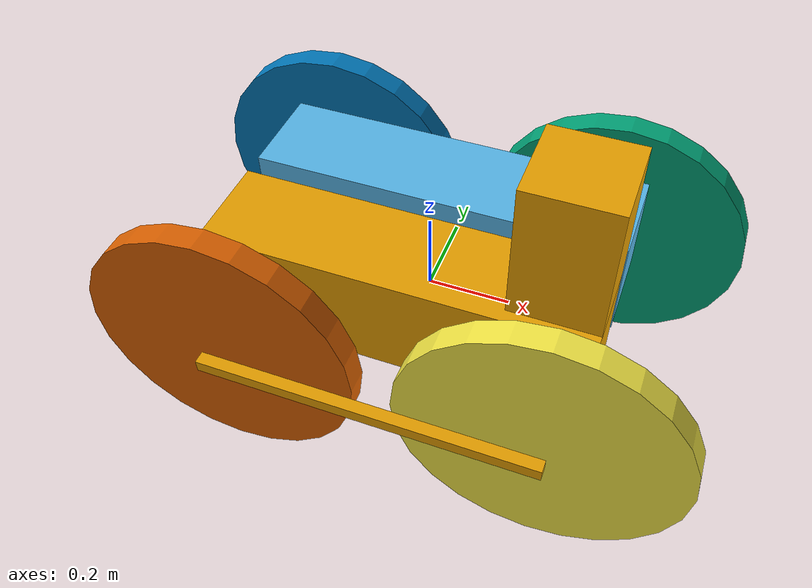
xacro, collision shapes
<?xml version='1.0' encoding='utf-8'?>
<robot name='coro_mike_sensor_config_1' xmlns:xacro="http://ros.org/wiki/xacro">
  <xacro:arg name="name" default="coro_mike_sensor_config_1"/>
  <xacro:property name="robot_namespace" value="$(arg name)"/>
  <link name='${robot_namespace}/base_link'>
    <inertial>
      <origin xyz='0 -0.14 0.11' rpy='0 -0 0'/>
      <mass value='27.85'/>
      <inertia ixx='0.274' ixy='0' ixz='0' iyy='1.961' iyz='0' izz='1.989'/>
    </inertial>
    <collision name='chassis_collision'>
      <origin xyz='0 -0.14 0.11' rpy='0 -0 0'/>
      <geometry>
        <box size='0.89 0.23 0.255'/>
      </geometry>
    </collision>
    <collision name='chassis_collision2'>
      <origin xyz='0 -0.41 0' rpy='0 -0 0'/>
      <geometry>
        <box size='0.8 0.03 0.03'/>
      </geometry>
    </collision>
    <collision name='tower_collision'>
      <origin xyz='0.345 -0.125 0.39' rpy='0 -0 0'/>
      <geometry>
        <box size='0.2 0.2 0.34'/>
      </geometry>
    </collision>
    <visual name='chassis_main_visual'>
      <origin xyz='0 -0.14 0.11' rpy='0 -0 0'/>
      <geometry>
        <box size='0.89 0.23 0.255'/>
      </geometry>
    </visual>
    <visual name='chassis_main_outside_visual1'>
      <origin xyz='0 -0.41 0' rpy='0 -0 0'/>
      <geometry>
        <box size='0.8 0.03 0.03'/>
      </geometry>
    </visual>
    <visual name='chassis_main_outside_visual2'>
      <origin xyz='0 -0.33 0' rpy='0 -0 0'/>
      <geometry>
        <box size='0.06 0.16 0.03'/>
      </geometry>
    </visual>
    <visual name='chassis_joint_visual'>
      <origin xyz='0 0 0.04' rpy='1.5708 -0 0'/>
      <geometry>
        <cylinder radius='0.05' length='0.05'/>
      </geometry>
    </visual>
    <visual name='plate1_visual'>
      <origin xyz='0.345 -0.125 0.54' rpy='0 -0 0'/>
      <geometry>
        <box size='0.2 0.2 0.005'/>
      </geometry>
    </visual>
    <visual name='plate2_visual'>
      <origin xyz='0.345 -0.125 0.43' rpy='0 -0 0'/>
      <geometry>
        <box size='0.2 0.2 0.005'/>
      </geometry>
    </visual>
    <visual name='plate3_visual_was35_11_29'>
      <origin xyz='0.345 -0.125 0.24' rpy='0 -0 0'/>
      <geometry>
        <box size='0.2 0.2 0.005'/>
      </geometry>
    </visual>
    <visual name='beam1_visual'>
      <origin xyz='0.436 -0.034 0.39' rpy='0 -0 0'/>
      <geometry>
        <box size='0.02 0.02 0.3'/>
      </geometry>
    </visual>
    <visual name='beam2_visual'>
      <origin xyz='0.436 -0.216 0.39' rpy='0 -0 0'/>
      <geometry>
        <box size='0.02 0.02 0.3'/>
      </geometry>
    </visual>
    <visual name='beam3_visual'>
      <origin xyz='0.254 -0.034 0.39' rpy='0 -0 0'/>
      <geometry>
        <box size='0.02 0.02 0.3'/>
      </geometry>
    </visual>
    <visual name='beam4_visual'>
      <origin xyz='0.254 -0.216 0.39' rpy='0 -0 0'/>
      <geometry>
        <box size='0.02 0.02 0.3'/>
      </geometry>
    </visual>
    <visual name='emergency_stop_bottom_visual'>
      <origin xyz='0.2 -0.15 0.245' rpy='0 -0 0'/>
      <geometry>
        <cylinder radius='0.015' length='0.015'/>
      </geometry>
    </visual>
    <visual name='emergency_stop_top_visual'>
      <origin xyz='0.2 -0.15 0.255' rpy='0 -0 0'/>
      <geometry>
        <cylinder radius='0.02' length='0.005'/>
      </geometry>
    </visual>
    <visual name='d435i_realsense_camera_visual'>
      <origin xyz='0.405 -0.125 0.513' rpy='0 0.46 0'/>
      <geometry>
        <mesh filename='package://coro_mike_sensor_config_1/meshes/realsense_d435.dae' scale='0.001 0.001 0.001'/>
      </geometry>
    </visual>
    <visual name='vlp16_visual1'>
      <origin xyz='0.345 -0.125 0.432' rpy='0 -0 0'/>
      <geometry>
        <mesh filename='package://coro_mike_sensor_config_1/meshes/VLP16_base_1.dae' scale='1 1 1'/>
      </geometry>
    </visual>
    <visual name='vlp_visual2'>
      <origin xyz='0.345 -0.125 0.432' rpy='0 -0 0'/>
      <geometry>
        <mesh filename='package://coro_mike_sensor_config_1/meshes/VLP16_base_2.dae' scale='1 1 1'/>
      </geometry>
    </visual>
    <visual name='vlp_visual3'>
      <origin xyz='0.345 -0.125 0.432' rpy='0 -0 0'/>
      <geometry>
        <mesh filename='package://coro_mike_sensor_config_1/meshes/VLP16_scan.dae' scale='1 1 1'/>
      </geometry>
    </visual>
    <visual name='camera_front_visual'>
      <origin xyz='0.435 -0.065 0.525' rpy='0 -0 0'/>
      <geometry>
        <box size='0.01 0.03 0.03'/>
      </geometry>
    </visual>
    <visual name='camera_lens_front_visual'>
      <origin xyz='0.445 -0.065 0.525' rpy='0 1.5708 0'/>
      <geometry>
        <cylinder radius='0.005' length='0.011'/>
      </geometry>
    </visual>
    <visual name='camera_rear_visual'>
      <origin xyz='0.255 -0.125 0.525' rpy='0 -0 0'/>
      <geometry>
        <box size='0.01 0.03 0.03'/>
      </geometry>
    </visual>
    <visual name='camera_lens_rear_visual'>
      <origin xyz='0.245 -0.125 0.525' rpy='0 1.5708 0'/>
      <geometry>
        <cylinder radius='0.005' length='0.011'/>
      </geometry>
    </visual>
    <visual name='camera_left_visual'>
      <origin xyz='0.345 -0.035 0.525' rpy='0 -0 0'/>
      <geometry>
        <box size='0.03 0.01 0.03'/>
      </geometry>
    </visual>
    <visual name='camera_lens_left_visual'>
      <origin xyz='0.345 -0.025 0.525' rpy='1.5708 -0 0'/>
      <geometry>
        <cylinder radius='0.005' length='0.011'/>
      </geometry>
    </visual>
    <visual name='camera_right_visual'>
      <origin xyz='0.345 -0.215 0.525' rpy='0 -0 0'/>
      <geometry>
        <box size='0.03 0.01 0.03'/>
      </geometry>
    </visual>
    <visual name='camera_lens_right_visual'>
      <origin xyz='0.345 -0.225 0.525' rpy='1.5708 -0 0'/>
      <geometry>
        <cylinder radius='0.005' length='0.011'/>
      </geometry>
    </visual>
    <visual name='light_front_visual'>
      <origin xyz='0.435 -0.125 0.562' rpy='0 -0 0'/>
      <geometry>
        <box size='0.04 0.13 0.04'/>
      </geometry>
    </visual>
    <visual name='light_rear_visual'>
      <origin xyz='0.255 -0.125 0.562' rpy='0 -0 0'/>
      <geometry>
        <box size='0.04 0.12 0.04'/>
      </geometry>
    </visual>
    <visual name='light_left_visual'>
      <origin xyz='0.345 -0.035 0.562' rpy='0 -0 0'/>
      <geometry>
        <box size='0.12 0.04 0.04'/>
      </geometry>
    </visual>
    <visual name='light_right_visual'>
      <origin xyz='0.345 -0.215 0.562' rpy='0 -0 0'/>
      <geometry>
        <box size='0.12 0.04 0.04'/>
      </geometry>
    </visual>
    <visual name='thermal_camera_visual'>
      <origin xyz='0.425 -0.185 0.524' rpy='0 -0 0'/>
      <geometry>
        <box size='0.02 0.03 0.03'/>
      </geometry>
    </visual>
  </link>
  <sensor name='thermal_camera' update_rate='9'>
    <parent link='${robot_namespace}/base_link'/>
    <origin xyz='0.44 -0.17 0.574' rpy='0 -0 0'/>
    <camera>
      <image width='206' height='156' format='R8G8B8' hfov='0.628' near='0.1' far='300' />
    </camera>
  </sensor>
  <sensor name='camera_front' update_rate='25'>
    <parent link='${robot_namespace}/base_link'/>
    <origin xyz='0.455 -0.065 0.525' rpy='0 -0 0'/>
    <camera>
      <image width='720' height='1080' format='R8G8B8' hfov='1.658' near='0.01' far='300' />
    </camera>
  </sensor>
  <sensor name='camera_rear' update_rate='25'>
    <parent link='${robot_namespace}/base_link'/>
    <origin xyz='0.235 -0.125 0.525' rpy='0 -0 3.14159'/>
    <camera>
      <image width='720' height='1080' format='R8G8B8' hfov='1.658' near='0.01' far='300' />
    </camera>
  </sensor>
  <sensor name='camera_left' update_rate='25'>
    <parent link='${robot_namespace}/base_link'/>
    <origin xyz='0.345 -0.015 0.525' rpy='0 -0 1.5708'/>
    <camera>
      <image width='720' height='1080' format='R8G8B8' hfov='1.658' near='0.01' far='300' />
    </camera>
  </sensor>
  <sensor name='camera_right' update_rate='25'>
    <parent link='${robot_namespace}/base_link'/>
    <origin xyz='0.345 -0.235 0.525' rpy='0 0 -1.5708'/>
    <camera>
      <image width='720' height='1080' format='R8G8B8' hfov='1.658' near='0.01' far='300' />
    </camera>
  </sensor>
  <sensor name='front_laser' update_rate='10'>
    <parent link='${robot_namespace}/base_link'/>
    <origin xyz='0.345 -0.125 0.47' rpy='0 -0 0'/>
  </sensor>
  <sensor name='rgbd_front' update_rate='30'>
    <parent link='${robot_namespace}/base_link'/>
    <origin xyz='0.435 -0.125 0.513' rpy='0 0.46 0'/>
    <camera>
      <image width='640' height='360' format='R8G8B8' hfov='1.50098' near='0.01' far='300' />
    </camera>
  </sensor>
  <sensor name='imu_sensor' update_rate='50'>
    <parent link='${robot_namespace}/base_link'/>
    <origin xyz='0 -0.125 0' rpy='0 -0 0'/>
  </sensor>
  <sensor name='air_pressure' update_rate='20'>
    <parent link='${robot_namespace}/base_link'/>
    <origin xyz='0 0 0' rpy='0 -0 0'/>
  </sensor>
  <sensor name='magnetometer' update_rate='50'>
    <parent link='${robot_namespace}/base_link'/>
    <origin xyz='0 0 0' rpy='0 -0 0'/>
  </sensor>
  <link name='${robot_namespace}/body_left'>
    <inertial>
      <origin xyz='0 0.14 0.11' rpy='0 -0 0'/>
      <mass value='27.85'/>
      <inertia ixx='0.274' ixy='0' ixz='0' iyy='1.961' iyz='0' izz='1.989'/>
    </inertial>
    <collision name='body_left_collision'>
      <origin xyz='0 0.14 0.11' rpy='0 -0 0'/>
      <geometry>
        <box size='0.89 0.23 0.255'/>
      </geometry>
    </collision>
    <collision name='chassis_left_collision2'>
      <origin xyz='0 0.41 0' rpy='0 -0 0'/>
      <geometry>
        <box size='0.8 0.03 0.03'/>
      </geometry>
    </collision>
    <visual name='chassis_left_visual'>
      <origin xyz='0 0.14 0.11' rpy='0 -0 0'/>
      <geometry>
        <box size='0.89 0.23 0.255'/>
      </geometry>
    </visual>
    <visual name='chassis_left_outside_visual1'>
      <origin xyz='0 0.41 0' rpy='0 -0 0'/>
      <geometry>
        <box size='0.8 0.03 0.03'/>
      </geometry>
    </visual>
    <visual name='chassis_left_outside_visual2'>
      <origin xyz='0 0.33 0' rpy='0 -0 0'/>
      <geometry>
        <box size='0.06 0.16 0.03'/>
      </geometry>
    </visual>
  </link>
  <link name='${robot_namespace}/front_left_wheel'>
    <inertial>
      <origin xyz='0 0 0' rpy='0 -0 0'/>
      <mass value='5'/>
      <inertia ixx='0.03' ixy='0' ixz='0' iyy='0.056' iyz='0' izz='0.03'/>
    </inertial>
    <collision name='front_left_wheel_collision'>
      <origin xyz='0 0 0' rpy='-1.5708 0 0'/>
      <geometry>
        <cylinder radius='0.33' length='0.06'/>
      </geometry>
    </collision>
    <visual name='front_left_wheel_visual'>
      <origin xyz='0 0 0' rpy='1.5708 -0 0'/>
      <geometry>
        <mesh filename='package://coro_mike_sensor_config_1/meshes/wheel_left.dae' scale='3.25 3.25 1.3'/>
      </geometry>
    </visual>
    <visual name='front_left_axle'>
      <origin xyz='0 -0.02 0' rpy='-1.5708 0 0'/>
      <geometry>
        <cylinder radius='0.01' length='0.16'/>
      </geometry>
    </visual>
  </link>
  <link name='${robot_namespace}/front_right_wheel'>
    <inertial>
      <origin xyz='0 0 0' rpy='0 -0 0'/>
      <mass value='5'/>
      <inertia ixx='0.03' ixy='0' ixz='0' iyy='0.056' iyz='0' izz='0.03'/>
    </inertial>
    <collision name='front_right_wheel_collision'>
      <origin xyz='0 0 0' rpy='1.5708 -0 0'/>
      <geometry>
        <cylinder radius='0.33' length='0.06'/>
      </geometry>
    </collision>
    <visual name='front_right_wheel_visual'>
      <origin xyz='0 0 0' rpy='1.5708 -0 0'/>
      <geometry>
        <mesh filename='package://coro_mike_sensor_config_1/meshes/wheel_right.dae' scale='3.25 3.25 1.3'/>
      </geometry>
    </visual>
    <visual name='front_right_axle'>
      <origin xyz='0 0.02 0' rpy='-1.5708 0 0'/>
      <geometry>
        <cylinder radius='0.01' length='0.16'/>
      </geometry>
    </visual>
  </link>
  <link name='${robot_namespace}/rear_left_wheel'>
    <inertial>
      <origin xyz='0 0 0' rpy='0 -0 0'/>
      <mass value='5'/>
      <inertia ixx='0.03' ixy='0' ixz='0' iyy='0.056' iyz='0' izz='0.03'/>
    </inertial>
    <collision name='rear_left_wheel_collision'>
      <origin xyz='0 0 0' rpy='-1.5708 0 0'/>
      <geometry>
        <cylinder radius='0.33' length='0.06'/>
      </geometry>
    </collision>
    <visual name='rear_left_wheel_visual'>
      <origin xyz='0 0 0' rpy='1.5708 -0 0'/>
      <geometry>
        <mesh filename='package://coro_mike_sensor_config_1/meshes/wheel_left.dae' scale='3.25 3.25 1.3'/>
      </geometry>
    </visual>
    <visual name='rear_left_axle'>
      <origin xyz='0 -0.02 0' rpy='-1.5708 0 0'/>
      <geometry>
        <cylinder radius='0.01' length='0.16'/>
      </geometry>
    </visual>
  </link>
  <link name='${robot_namespace}/rear_right_wheel'>
    <inertial>
      <origin xyz='0 0 0' rpy='0 -0 0'/>
      <mass value='5'/>
      <inertia ixx='0.03' ixy='0' ixz='0' iyy='0.056' iyz='0' izz='0.03'/>
    </inertial>
    <collision name='rear_right_wheel_collision'>
      <origin xyz='0 0 0' rpy='1.5708 -0 0'/>
      <geometry>
        <cylinder radius='0.33' length='0.06'/>
      </geometry>
    </collision>
    <visual name='rear_right_wheel_visual'>
      <origin xyz='0 0 0' rpy='1.5708 -0 0'/>
      <geometry>
        <mesh filename='package://coro_mike_sensor_config_1/meshes/wheel_right.dae' scale='3.25 3.25 1.3'/>
      </geometry>
    </visual>
    <visual name='front_right_axle'>
      <origin xyz='0 0.02 0' rpy='-1.5708 0 0'/>
      <geometry>
        <cylinder radius='0.01' length='0.16'/>
      </geometry>
    </visual>
  </link>
  <joint name='Center Pivot' type='revolute'>
    <origin xyz='0 0 0' rpy='0 -0 0'/>
    <parent link='${robot_namespace}/base_link'/>
    <child link='${robot_namespace}/body_left'/>
    <dynamics damping='0' friction='0' />
    <axis xyz='0 -1 0'/>
    <limit lower='-0.5585' upper='0.5585' effort='30' velocity='1'/>
  </joint>
  <joint name='front_left_wheel_joint' type='revolute'>
    <origin xyz='0.375 0.34 0' rpy='0 -0 0'/>
    <parent link='${robot_namespace}/body_left'/>
    <child link='${robot_namespace}/front_left_wheel'/>
    <axis xyz='0 1 0'/>
    <limit lower='-1.79769e+308' upper='1.79769e+308' effort='60' velocity='4'/>
  </joint>
  <joint name='rear_left_wheel_joint' type='revolute'>
    <origin xyz='-0.375 0.34 0' rpy='0 -0 0'/>
    <parent link='${robot_namespace}/body_left'/>
    <child link='${robot_namespace}/rear_left_wheel'/>
    <axis xyz='0 1 0'/>
    <limit lower='-1.79769e+308' upper='1.79769e+308' effort='60' velocity='4'/>
  </joint>
  <joint name='rear_right_wheel_joint' type='revolute'>
    <origin xyz='-0.375 -0.34 0' rpy='0 -0 0'/>
    <parent link='${robot_namespace}/base_link'/>
    <child link='${robot_namespace}/rear_right_wheel'/>
    <axis xyz='0 1 0'/>
    <limit lower='-1.79769e+308' upper='1.79769e+308' effort='60' velocity='4'/>
  </joint>
  <joint name='front_right_wheel_joint' type='revolute'>
    <origin xyz='0.375 -0.34 0' rpy='0 -0 0'/>
    <parent link='${robot_namespace}/base_link'/>
    <child link='${robot_namespace}/front_right_wheel'/>
    <axis xyz='0 1 0'/>
    <limit lower='-1.79769e+308' upper='1.79769e+308' effort='60' velocity='4'/>
  </joint>
</robot>
